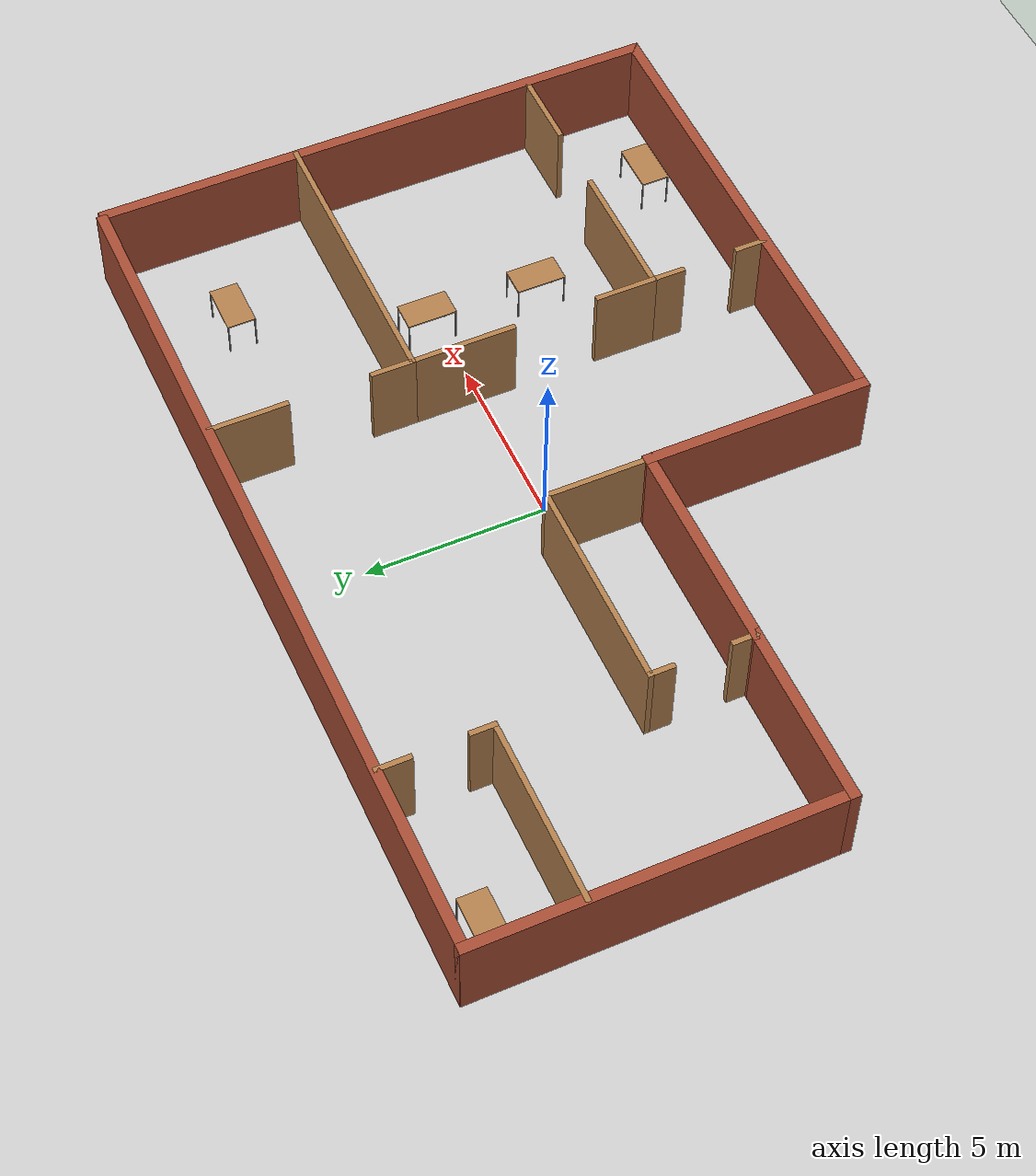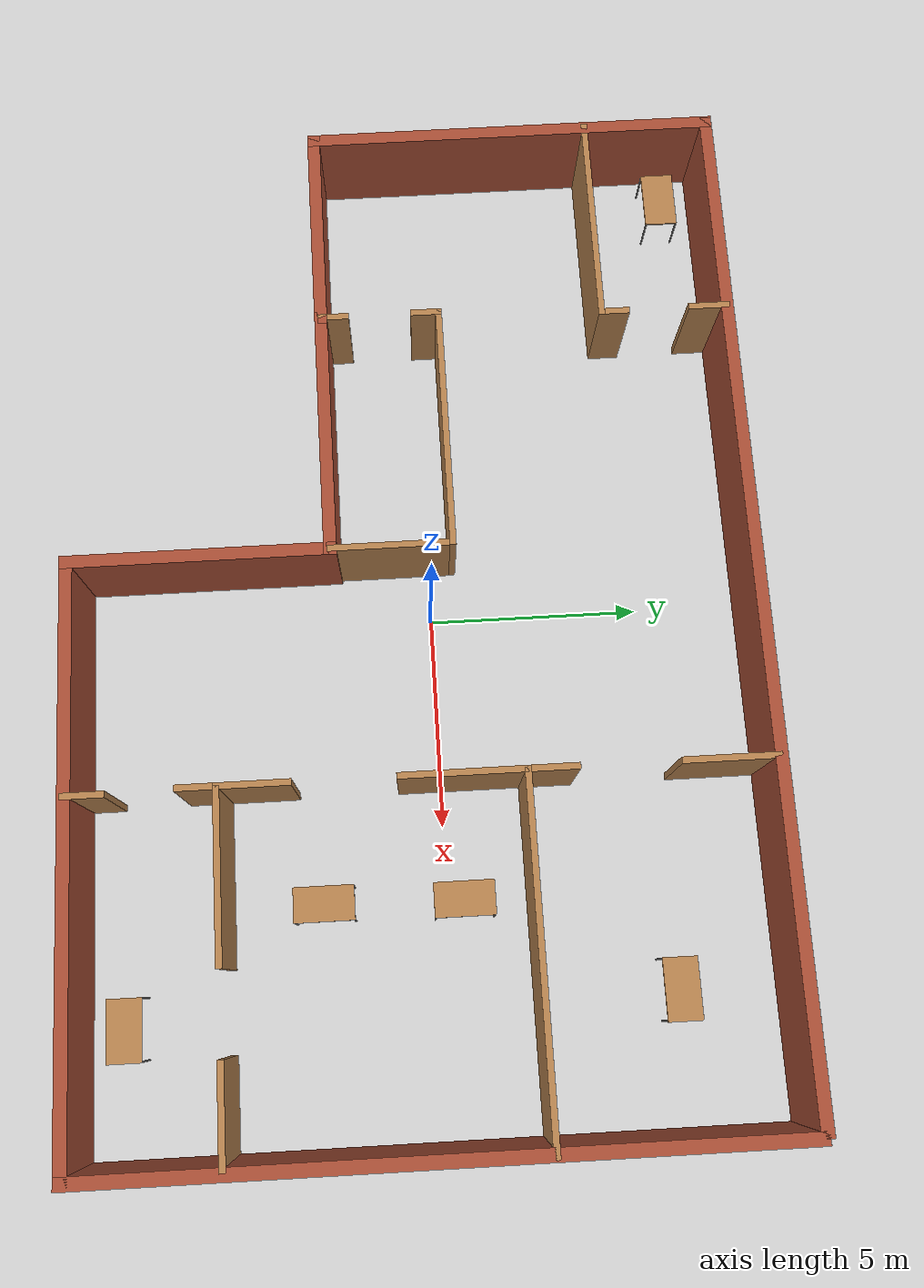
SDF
<sdf version="1.6">
 <world name="default">
  <model name="ground_plane">
   <static>1</static>
   <link name="link">
    <collision name="collision">
     <geometry><plane><normal>0 0 1</normal><size>100 100</size></plane></geometry>
     <surface><friction><ode><mu>100</mu><mu2>50</mu2></ode></friction></surface>
    </collision>
    <visual name="visual">
     <cast_shadows>0</cast_shadows>
     <geometry><plane><normal>0 0 1</normal><size>100 100</size></plane></geometry>
     <material>
      <script><uri>file://media/materials/scripts/gazebo.material</uri><name>Gazebo/Grey</name></script>
     </material>
    </visual>
   </link>
  </model>
  <light name="sun" type="directional">
   <pose>0 0 10 0 -0 0</pose>
   <diffuse>0.8 0.8 0.8 1</diffuse>
   <specular>0.1 0.1 0.1 1</specular>
   <attenuation>
    <range>1000</range>
    <constant>0.9</constant>
    <linear>0.01</linear>
    <quadratic>0.001</quadratic>
   </attenuation>
   <direction>-0.5 0.5 -1</direction>
  </light>
  <gravity>0 0 -9.8</gravity>
  <magnetic_field>6e-06 2.3e-05 -4.2e-05</magnetic_field>
  <atmosphere type="adiabatic"/>
  <physics name="default_physics" default="0" type="ode">
   <max_step_size>0.001</max_step_size>
   <real_time_factor>1</real_time_factor>
   <real_time_update_rate>1000</real_time_update_rate>
  </physics>
  <scene><ambient>0.4 0.4 0.4 1</ambient><background>0.7 0.7 0.7 1</background><shadows>1</shadows></scene>
  <spherical_coordinates>
   <surface_model>EARTH_WGS84</surface_model>
   <latitude_deg>0</latitude_deg>
   <longitude_deg>0</longitude_deg>
   <elevation>0</elevation>
   <heading_deg>0</heading_deg>
  </spherical_coordinates>
  <model name="Building">
   <pose>0.096606 -0.398648 0 0 -0 0</pose>
   <link name="Wall_0">
    <collision name="Wall_0_Collision">
     <geometry><box><size>6.15 0.3 2.5</size></box></geometry>
     <pose>0 0 1.25 0 -0 0</pose>
    </collision>
    <visual name="Wall_0_Visual">
     <pose>0 0 1.25 0 -0 0</pose>
     <geometry><box><size>6.15 0.3 2.5</size></box></geometry>
     <material>
      <script><uri>file://media/materials/scripts/gazebo.material</uri><name>Gazebo/Bricks</name></script>
      <ambient>1 1 1 1</ambient>
     </material>
    </visual>
    <pose>-4.2905 -1.875 0 0 -0 0</pose>
   </link>
   <link name="Wall_1">
    <collision name="Wall_1_Collision">
     <geometry><box><size>3 0.15 2.5</size></box></geometry>
     <pose>0 0 1.25 0 -0 0</pose>
    </collision>
    <visual name="Wall_1_Visual">
     <pose>0 0 1.25 0 -0 0</pose>
     <geometry><box><size>3 0.15 2.5</size></box></geometry>
     <material>
      <script><uri>file://media/materials/scripts/gazebo.material</uri><name>Gazebo/Wood</name></script>
      <ambient>1 1 1 1</ambient>
     </material>
    </visual>
    <pose>-1.3655 -0.45 0 0 -0 1.5708</pose>
   </link>
   <link name="Wall_10">
    <collision name="Wall_10_Collision">
     <geometry><box><size>24.25 0.3 2.5</size></box></geometry>
     <pose>0 0 1.25 0 -0 0</pose>
    </collision>
    <visual name="Wall_10_Visual">
     <pose>0 0 1.25 0 -0 0</pose>
     <geometry><box><size>24.25 0.3 2.5</size></box></geometry>
     <material>
      <script><uri>file://media/materials/scripts/gazebo.material</uri><name>Gazebo/Bricks</name></script>
      <ambient>1 1 1 1</ambient>
     </material>
    </visual>
    <pose>-0.051365 7.975 0 0 -0 0</pose>
   </link>
   <link name="Wall_15">
    <collision name="Wall_15_Collision">
     <geometry><box><size>5.25 0.15 2.5</size></box></geometry>
     <pose>0 0 1.25 0 -0 0</pose>
    </collision>
    <visual name="Wall_15_Visual">
     <pose>0 0 1.25 0 -0 0</pose>
     <geometry><box><size>5.25 0.15 2.5</size></box></geometry>
     <material>
      <script><uri>file://media/materials/scripts/gazebo.material</uri><name>Gazebo/Wood</name></script>
      <ambient>1 1 1 1</ambient>
     </material>
    </visual>
    <pose>-9.54678 4.92232 0 0 -0 0</pose>
   </link>
   <link name="Wall_17">
    <collision name="Wall_17_Collision">
     <geometry><box><size>0.75 0.15 2.5</size></box></geometry>
     <pose>0 0 1.25 0 -0 0</pose>
    </collision>
    <visual name="Wall_17_Visual">
     <pose>0 0 1.25 0 -0 0</pose>
     <geometry><box><size>0.75 0.15 2.5</size></box></geometry>
     <material>
      <script><uri>file://media/materials/scripts/gazebo.material</uri><name>Gazebo/Wood</name></script>
      <ambient>1 1 1 1</ambient>
     </material>
    </visual>
    <pose>-6.99678 5.22232 0 0 -0 1.5708</pose>
   </link>
   <link name="Wall_2">
    <collision name="Wall_2_Collision">
     <geometry><box><size>6 0.15 2.5</size></box></geometry>
     <pose>0 0 1.25 0 -0 0</pose>
    </collision>
    <visual name="Wall_2_Visual">
     <pose>0 0 1.25 0 -0 0</pose>
     <geometry><box><size>6 0.15 2.5</size></box></geometry>
     <material>
      <script><uri>file://media/materials/scripts/gazebo.material</uri><name>Gazebo/Wood</name></script>
      <ambient>1 1 1 1</ambient>
     </material>
    </visual>
    <pose>-4.2905 0.975 0 0 -0 3.14159</pose>
   </link>
   <link name="Wall_20">
    <collision name="Wall_20_Collision">
     <geometry><box><size>1 0.15 2.5</size></box></geometry>
     <pose>0 0 1.25 0 -0 0</pose>
    </collision>
    <visual name="Wall_20_Visual">
     <pose>0 0 1.25 0 -0 0</pose>
     <geometry><box><size>1 0.15 2.5</size></box></geometry>
     <material>
      <script><uri>file://media/materials/scripts/gazebo.material</uri><name>Gazebo/Wood</name></script>
      <ambient>1 1 1 1</ambient>
     </material>
    </visual>
    <pose>-7.0138 7.53363 0 0 0 -1.5708</pose>
   </link>
   <link name="Wall_22">
    <collision name="Wall_22_Collision">
     <geometry><box><size>6.4 0.3 2.5</size></box></geometry>
     <pose>0 0 1.25 0 -0 0</pose>
    </collision>
    <visual name="Wall_22_Visual">
     <pose>0 0 1.25 0 -0 0</pose>
     <geometry><box><size>6.4 0.3 2.5</size></box></geometry>
     <material>
      <script><uri>file://media/materials/scripts/gazebo.material</uri><name>Gazebo/Bricks</name></script>
      <ambient>1 1 1 1</ambient>
     </material>
    </visual>
    <pose>-1.3655 -4.925 0 0 0 -1.5708</pose>
   </link>
   <link name="Wall_23">
    <collision name="Wall_23_Collision">
     <geometry><box><size>13.731 0.3 2.5</size></box></geometry>
     <pose>0 0 1.25 0 -0 0</pose>
    </collision>
    <visual name="Wall_23_Visual">
     <pose>0 0 1.25 0 -0 0</pose>
     <geometry><box><size>13.731 0.3 2.5</size></box></geometry>
     <material>
      <script><uri>file://media/materials/scripts/gazebo.material</uri><name>Gazebo/Bricks</name></script>
      <ambient>1 1 1 1</ambient>
     </material>
    </visual>
    <pose>5.35 -7.975 0 0 -0 0</pose>
   </link>
   <link name="Wall_24">
    <collision name="Wall_24_Collision">
     <geometry><box><size>16.15 0.3 2.5</size></box></geometry>
     <pose>0 0 1.25 0 -0 0</pose>
    </collision>
    <visual name="Wall_24_Visual">
     <pose>0 0 1.25 0 -0 0</pose>
     <geometry><box><size>16.15 0.3 2.5</size></box></geometry>
     <material>
      <script><uri>file://media/materials/scripts/gazebo.material</uri><name>Gazebo/Bricks</name></script>
      <ambient>1 1 1 1</ambient>
     </material>
    </visual>
    <pose>12.0655 -0.05 0 0 -0 1.5708</pose>
   </link>
   <link name="Wall_26">
    <collision name="Wall_26_Collision">
     <geometry><box><size>10.15 0.3 2.5</size></box></geometry>
     <pose>0 0 1.25 0 -0 0</pose>
    </collision>
    <visual name="Wall_26_Visual">
     <pose>0 0 1.25 0 -0 0</pose>
     <geometry><box><size>10.15 0.3 2.5</size></box></geometry>
     <material>
      <script><uri>file://media/materials/scripts/gazebo.material</uri><name>Gazebo/Bricks</name></script>
      <ambient>1 1 1 1</ambient>
     </material>
    </visual>
    <pose>-12.0655 3.05 0 0 -0 1.5708</pose>
   </link>
   <link name="Wall_29">
    <collision name="Wall_29_Collision">
     <geometry><box><size>2.25 0.15 2.5</size></box></geometry>
     <pose>0 0 1.25 0 -0 0</pose>
    </collision>
    <visual name="Wall_29_Visual">
     <pose>0 0 1.25 0 -0 0</pose>
     <geometry><box><size>2.25 0.15 2.5</size></box></geometry>
     <material>
      <script><uri>file://media/materials/scripts/gazebo.material</uri><name>Gazebo/Wood</name></script>
      <ambient>1 1 1 1</ambient>
     </material>
    </visual>
    <pose>4.00585 6.87362 0 0 0 -1.5708</pose>
   </link>
   <link name="Wall_3">
    <collision name="Wall_3_Collision">
     <geometry><box><size>0.75 0.15 2.5</size></box></geometry>
     <pose>0 0 1.25 0 -0 0</pose>
    </collision>
    <visual name="Wall_3_Visual">
     <pose>0 0 1.25 0 -0 0</pose>
     <geometry><box><size>0.75 0.15 2.5</size></box></geometry>
     <material>
      <script><uri>file://media/materials/scripts/gazebo.material</uri><name>Gazebo/Wood</name></script>
      <ambient>1 1 1 1</ambient>
     </material>
    </visual>
    <pose>-7.2155 0.675 0 0 0 -1.5708</pose>
   </link>
   <link name="Wall_34">
    <collision name="Wall_34_Collision">
     <geometry><box><size>1.25 0.15 2.5</size></box></geometry>
     <pose>0 0 1.25 0 -0 0</pose>
    </collision>
    <visual name="Wall_34_Visual">
     <pose>0 0 1.25 0 -0 0</pose>
     <geometry><box><size>1.25 0.15 2.5</size></box></geometry>
     <material>
      <script><uri>file://media/materials/scripts/gazebo.material</uri><name>Gazebo/Wood</name></script>
      <ambient>1 1 1 1</ambient>
     </material>
    </visual>
    <pose>3.99805 2.86928 0 0 0 -1.5708</pose>
   </link>
   <link name="Wall_35">
    <collision name="Wall_35_Collision">
     <geometry><box><size>8.25 0.15 2.5</size></box></geometry>
     <pose>0 0 1.25 0 -0 0</pose>
    </collision>
    <visual name="Wall_35_Visual">
     <pose>0 0 1.25 0 -0 0</pose>
     <geometry><box><size>8.25 0.15 2.5</size></box></geometry>
     <material>
      <script><uri>file://media/materials/scripts/gazebo.material</uri><name>Gazebo/Wood</name></script>
      <ambient>1 1 1 1</ambient>
     </material>
    </visual>
    <pose>8.04805 2.31928 0 0 -0 0</pose>
   </link>
   <link name="Wall_38">
    <collision name="Wall_38_Collision">
     <geometry><box><size>3 0.15 2.5</size></box></geometry>
     <pose>0 0 1.25 0 -0 0</pose>
    </collision>
    <visual name="Wall_38_Visual">
     <pose>0 0 1.25 0 -0 0</pose>
     <geometry><box><size>3 0.15 2.5</size></box></geometry>
     <material>
      <script><uri>file://media/materials/scripts/gazebo.material</uri><name>Gazebo/Wood</name></script>
      <ambient>1 1 1 1</ambient>
     </material>
    </visual>
    <pose>3.99805 0.894284 0 0 0 -1.5708</pose>
   </link>
   <link name="Wall_40">
    <collision name="Wall_40_Collision">
     <geometry><box><size>1.75 0.15 2.5</size></box></geometry>
     <pose>0 0 1.25 0 -0 0</pose>
    </collision>
    <visual name="Wall_40_Visual">
     <pose>0 0 1.25 0 -0 0</pose>
     <geometry><box><size>1.75 0.15 2.5</size></box></geometry>
     <material>
      <script><uri>file://media/materials/scripts/gazebo.material</uri><name>Gazebo/Wood</name></script>
      <ambient>1 1 1 1</ambient>
     </material>
    </visual>
    <pose>4.00066 -3.81284 0 0 0 -1.5708</pose>
   </link>
   <link name="Wall_44">
    <collision name="Wall_44_Collision">
     <geometry><box><size>1 0.15 2.5</size></box></geometry>
     <pose>0 0 1.25 0 -0 0</pose>
    </collision>
    <visual name="Wall_44_Visual">
     <pose>0 0 1.25 0 -0 0</pose>
     <geometry><box><size>1 0.15 2.5</size></box></geometry>
     <material>
      <script><uri>file://media/materials/scripts/gazebo.material</uri><name>Gazebo/Wood</name></script>
      <ambient>1 1 1 1</ambient>
     </material>
    </visual>
    <pose>4.00066 -5.03784 0 0 0 -1.5708</pose>
   </link>
   <link name="Wall_46">
    <collision name="Wall_46_Collision">
     <geometry><box><size>1 0.15 2.5</size></box></geometry>
     <pose>0 0 1.25 0 -0 0</pose>
    </collision>
    <visual name="Wall_46_Visual">
     <pose>0 0 1.25 0 -0 0</pose>
     <geometry><box><size>1 0.15 2.5</size></box></geometry>
     <material>
      <script><uri>file://media/materials/scripts/gazebo.material</uri><name>Gazebo/Wood</name></script>
      <ambient>1 1 1 1</ambient>
     </material>
    </visual>
    <pose>4.04354 -7.56511 0 0 -0 1.5708</pose>
   </link>
   <link name="Wall_48">
    <collision name="Wall_48_Collision">
     <geometry><box><size>4 0.15 2.5</size></box></geometry>
     <pose>0 0 1.25 0 -0 0</pose>
    </collision>
    <visual name="Wall_48_Visual">
     <pose>0 0 1.25 0 -0 0</pose>
     <geometry><box><size>4 0.15 2.5</size></box></geometry>
     <material>
      <script><uri>file://media/materials/scripts/gazebo.material</uri><name>Gazebo/Wood</name></script>
      <ambient>1 1 1 1</ambient>
     </material>
    </visual>
    <pose>5.92566 -4.61284 0 0 -0 0</pose>
   </link>
   <link name="Wall_5">
    <collision name="Wall_5_Collision">
     <geometry><box><size>0.75 0.15 2.5</size></box></geometry>
     <pose>0 0 1.25 0 -0 0</pose>
    </collision>
    <visual name="Wall_5_Visual">
     <pose>0 0 1.25 0 -0 0</pose>
     <geometry><box><size>0.75 0.15 2.5</size></box></geometry>
     <material>
      <script><uri>file://media/materials/scripts/gazebo.material</uri><name>Gazebo/Wood</name></script>
      <ambient>1 1 1 1</ambient>
     </material>
    </visual>
    <pose>-7.2155 -1.575 0 0 -0 1.5708</pose>
   </link>
   <link name="Wall_50">
    <collision name="Wall_50_Collision">
     <geometry><box><size>2.25 0.15 2.5</size></box></geometry>
     <pose>0 0 1.25 0 -0 0</pose>
    </collision>
    <visual name="Wall_50_Visual">
     <pose>0 0 1.25 0 -0 0</pose>
     <geometry><box><size>2.25 0.15 2.5</size></box></geometry>
     <material>
      <script><uri>file://media/materials/scripts/gazebo.material</uri><name>Gazebo/Wood</name></script>
      <ambient>1 1 1 1</ambient>
     </material>
    </visual>
    <pose>10.9177 -4.61728 0 0 -0 0</pose>
   </link>
   <link name="Wall_7">
    <collision name="Wall_7_Collision">
     <geometry><box><size>5.15 0.3 2.5</size></box></geometry>
     <pose>0 0 1.25 0 -0 0</pose>
    </collision>
    <visual name="Wall_7_Visual">
     <pose>0 0 1.25 0 -0 0</pose>
     <geometry><box><size>5.15 0.3 2.5</size></box></geometry>
     <material>
      <script><uri>file://media/materials/scripts/gazebo.material</uri><name>Gazebo/Bricks</name></script>
      <ambient>1 1 1 1</ambient>
     </material>
    </visual>
    <pose>-9.6405 -1.875 0 0 -0 3.14159</pose>
   </link>
   <static>1</static>
  </model>
  <model name="table">
   <static>0</static>
   <link name="link">
    <collision name="surface">
     <pose>0 0 1 0 -0 0</pose>
     <geometry><box><size>1.5 0.8 0.03</size></box></geometry>
     <surface><friction><ode><mu>0.6</mu><mu2>0.6</mu2></ode></friction></surface>
    </collision>
    <visual name="visual1">
     <pose>0 0 1 0 -0 0</pose>
     <geometry><box><size>1.4 0.8 0.04</size></box></geometry>
     <material>
      <script><uri>file://media/materials/scripts/gazebo.material</uri><name>Gazebo/Wood</name></script>
     </material>
    </visual>
    <collision name="front_left_leg">
     <pose>0.68 0.38 0.5 0 -0 0</pose>
     <geometry><cylinder><radius>0.02</radius><length>1</length></cylinder></geometry>
    </collision>
    <visual name="front_left_leg">
     <pose>0.68 0.38 0.5 0 -0 0</pose>
     <geometry><cylinder><radius>0.02</radius><length>1</length></cylinder></geometry>
     <material>
      <script><uri>file://media/materials/scripts/gazebo.material</uri><name>Gazebo/Grey</name></script>
     </material>
    </visual>
    <collision name="front_right_leg">
     <pose>0.68 -0.38 0.5 0 -0 0</pose>
     <geometry><cylinder><radius>0.02</radius><length>1</length></cylinder></geometry>
    </collision>
    <visual name="front_right_leg">
     <pose>0.68 -0.38 0.5 0 -0 0</pose>
     <geometry><cylinder><radius>0.02</radius><length>1</length></cylinder></geometry>
     <material>
      <script><uri>file://media/materials/scripts/gazebo.material</uri><name>Gazebo/Grey</name></script>
     </material>
    </visual>
    <collision name="back_right_leg">
     <pose>-0.68 -0.38 0.5 0 -0 0</pose>
     <geometry><cylinder><radius>0.02</radius><length>1</length></cylinder></geometry>
    </collision>
    <visual name="back_right_leg">
     <pose>-0.68 -0.38 0.5 0 -0 0</pose>
     <geometry><cylinder><radius>0.02</radius><length>1</length></cylinder></geometry>
     <material>
      <script><uri>file://media/materials/scripts/gazebo.material</uri><name>Gazebo/Grey</name></script>
     </material>
    </visual>
    <collision name="back_left_leg">
     <pose>-0.68 0.38 0.5 0 -0 0</pose>
     <geometry><cylinder><radius>0.02</radius><length>1</length></cylinder></geometry>
    </collision>
    <visual name="back_left_leg">
     <pose>-0.68 0.38 0.5 0 -0 0</pose>
     <geometry><cylinder><radius>0.02</radius><length>1</length></cylinder></geometry>
     <material>
      <script><uri>file://media/materials/scripts/gazebo.material</uri><name>Gazebo/Grey</name></script>
     </material>
    </visual>
    <inertial>
     <inertia><ixx>1</ixx><ixy>0</ixy><ixz>0</ixz><iyy>1</iyy><iyz>0</iyz><izz>1</izz></inertia>
     <mass>1</mass>
    </inertial>
   </link>
   <pose>-10.7228 6.5125 -9e-06 1e-06 -1e-06 0</pose>
  </model>
  <model name="table_0">
   <static>0</static>
   <link name="link">
    <collision name="surface">
     <pose>0 0 1 0 -0 0</pose>
     <geometry><box><size>1.5 0.8 0.03</size></box></geometry>
     <surface><friction><ode><mu>0.6</mu><mu2>0.6</mu2></ode></friction></surface>
    </collision>
    <visual name="visual1">
     <pose>0 0 1 0 -0 0</pose>
     <geometry><box><size>1.4 0.8 0.04</size></box></geometry>
     <material>
      <script><uri>file://media/materials/scripts/gazebo.material</uri><name>Gazebo/Wood</name></script>
     </material>
    </visual>
    <collision name="front_left_leg">
     <pose>0.68 0.38 0.5 0 -0 0</pose>
     <geometry><cylinder><radius>0.02</radius><length>1</length></cylinder></geometry>
    </collision>
    <visual name="front_left_leg">
     <pose>0.68 0.38 0.5 0 -0 0</pose>
     <geometry><cylinder><radius>0.02</radius><length>1</length></cylinder></geometry>
     <material>
      <script><uri>file://media/materials/scripts/gazebo.material</uri><name>Gazebo/Grey</name></script>
     </material>
    </visual>
    <collision name="front_right_leg">
     <pose>0.68 -0.38 0.5 0 -0 0</pose>
     <geometry><cylinder><radius>0.02</radius><length>1</length></cylinder></geometry>
    </collision>
    <visual name="front_right_leg">
     <pose>0.68 -0.38 0.5 0 -0 0</pose>
     <geometry><cylinder><radius>0.02</radius><length>1</length></cylinder></geometry>
     <material>
      <script><uri>file://media/materials/scripts/gazebo.material</uri><name>Gazebo/Grey</name></script>
     </material>
    </visual>
    <collision name="back_right_leg">
     <pose>-0.68 -0.38 0.5 0 -0 0</pose>
     <geometry><cylinder><radius>0.02</radius><length>1</length></cylinder></geometry>
    </collision>
    <visual name="back_right_leg">
     <pose>-0.68 -0.38 0.5 0 -0 0</pose>
     <geometry><cylinder><radius>0.02</radius><length>1</length></cylinder></geometry>
     <material>
      <script><uri>file://media/materials/scripts/gazebo.material</uri><name>Gazebo/Grey</name></script>
     </material>
    </visual>
    <collision name="back_left_leg">
     <pose>-0.68 0.38 0.5 0 -0 0</pose>
     <geometry><cylinder><radius>0.02</radius><length>1</length></cylinder></geometry>
    </collision>
    <visual name="back_left_leg">
     <pose>-0.68 0.38 0.5 0 -0 0</pose>
     <geometry><cylinder><radius>0.02</radius><length>1</length></cylinder></geometry>
     <material>
      <script><uri>file://media/materials/scripts/gazebo.material</uri><name>Gazebo/Grey</name></script>
     </material>
    </visual>
    <inertial>
     <inertia><ixx>1</ixx><ixy>0</ixy><ixz>0</ixz><iyy>1</iyy><iyz>0</iyz><izz>1</izz></inertia>
     <mass>1</mass>
    </inertial>
   </link>
   <pose>9.00297 5.12195 -1e-06 -1e-06 1e-06 0</pose>
  </model>
  <model name="table_1">
   <static>0</static>
   <link name="link">
    <collision name="surface">
     <pose>0 0 1 0 -0 0</pose>
     <geometry><box><size>1.5 0.8 0.03</size></box></geometry>
     <surface><friction><ode><mu>0.6</mu><mu2>0.6</mu2></ode></friction></surface>
    </collision>
    <visual name="visual1">
     <pose>0 0 1 0 -0 0</pose>
     <geometry><box><size>1.4 0.8 0.04</size></box></geometry>
     <material>
      <script><uri>file://media/materials/scripts/gazebo.material</uri><name>Gazebo/Wood</name></script>
     </material>
    </visual>
    <collision name="front_left_leg">
     <pose>0.68 0.38 0.5 0 -0 0</pose>
     <geometry><cylinder><radius>0.02</radius><length>1</length></cylinder></geometry>
    </collision>
    <visual name="front_left_leg">
     <pose>0.68 0.38 0.5 0 -0 0</pose>
     <geometry><cylinder><radius>0.02</radius><length>1</length></cylinder></geometry>
     <material>
      <script><uri>file://media/materials/scripts/gazebo.material</uri><name>Gazebo/Grey</name></script>
     </material>
    </visual>
    <collision name="front_right_leg">
     <pose>0.68 -0.38 0.5 0 -0 0</pose>
     <geometry><cylinder><radius>0.02</radius><length>1</length></cylinder></geometry>
    </collision>
    <visual name="front_right_leg">
     <pose>0.68 -0.38 0.5 0 -0 0</pose>
     <geometry><cylinder><radius>0.02</radius><length>1</length></cylinder></geometry>
     <material>
      <script><uri>file://media/materials/scripts/gazebo.material</uri><name>Gazebo/Grey</name></script>
     </material>
    </visual>
    <collision name="back_right_leg">
     <pose>-0.68 -0.38 0.5 0 -0 0</pose>
     <geometry><cylinder><radius>0.02</radius><length>1</length></cylinder></geometry>
    </collision>
    <visual name="back_right_leg">
     <pose>-0.68 -0.38 0.5 0 -0 0</pose>
     <geometry><cylinder><radius>0.02</radius><length>1</length></cylinder></geometry>
     <material>
      <script><uri>file://media/materials/scripts/gazebo.material</uri><name>Gazebo/Grey</name></script>
     </material>
    </visual>
    <collision name="back_left_leg">
     <pose>-0.68 0.38 0.5 0 -0 0</pose>
     <geometry><cylinder><radius>0.02</radius><length>1</length></cylinder></geometry>
    </collision>
    <visual name="back_left_leg">
     <pose>-0.68 0.38 0.5 0 -0 0</pose>
     <geometry><cylinder><radius>0.02</radius><length>1</length></cylinder></geometry>
     <material>
      <script><uri>file://media/materials/scripts/gazebo.material</uri><name>Gazebo/Grey</name></script>
     </material>
    </visual>
    <inertial>
     <inertia><ixx>1</ixx><ixy>0</ixy><ixz>0</ixz><iyy>1</iyy><iyz>0</iyz><izz>1</izz></inertia>
     <mass>1</mass>
    </inertial>
   </link>
   <pose>6.75225 0.384972 -9e-06 0 1e-06 1.57157</pose>
  </model>
  <model name="table_1_clone">
   <static>0</static>
   <link name="link">
    <collision name="surface">
     <pose>0 0 1 0 -0 0</pose>
     <geometry><box><size>1.5 0.8 0.03</size></box></geometry>
     <surface><friction><ode><mu>0.6</mu><mu2>0.6</mu2></ode></friction></surface>
    </collision>
    <visual name="visual1">
     <pose>0 0 1 0 -0 0</pose>
     <geometry><box><size>1.4 0.8 0.04</size></box></geometry>
     <material>
      <script><uri>file://media/materials/scripts/gazebo.material</uri><name>Gazebo/Wood</name></script>
     </material>
    </visual>
    <collision name="front_left_leg">
     <pose>0.68 0.38 0.5 0 -0 0</pose>
     <geometry><cylinder><radius>0.02</radius><length>1</length></cylinder></geometry>
    </collision>
    <visual name="front_left_leg">
     <pose>0.68 0.38 0.5 0 -0 0</pose>
     <geometry><cylinder><radius>0.02</radius><length>1</length></cylinder></geometry>
     <material>
      <script><uri>file://media/materials/scripts/gazebo.material</uri><name>Gazebo/Grey</name></script>
     </material>
    </visual>
    <collision name="front_right_leg">
     <pose>0.68 -0.38 0.5 0 -0 0</pose>
     <geometry><cylinder><radius>0.02</radius><length>1</length></cylinder></geometry>
    </collision>
    <visual name="front_right_leg">
     <pose>0.68 -0.38 0.5 0 -0 0</pose>
     <geometry><cylinder><radius>0.02</radius><length>1</length></cylinder></geometry>
     <material>
      <script><uri>file://media/materials/scripts/gazebo.material</uri><name>Gazebo/Grey</name></script>
     </material>
    </visual>
    <collision name="back_right_leg">
     <pose>-0.68 -0.38 0.5 0 -0 0</pose>
     <geometry><cylinder><radius>0.02</radius><length>1</length></cylinder></geometry>
    </collision>
    <visual name="back_right_leg">
     <pose>-0.68 -0.38 0.5 0 -0 0</pose>
     <geometry><cylinder><radius>0.02</radius><length>1</length></cylinder></geometry>
     <material>
      <script><uri>file://media/materials/scripts/gazebo.material</uri><name>Gazebo/Grey</name></script>
     </material>
    </visual>
    <collision name="back_left_leg">
     <pose>-0.68 0.38 0.5 0 -0 0</pose>
     <geometry><cylinder><radius>0.02</radius><length>1</length></cylinder></geometry>
    </collision>
    <visual name="back_left_leg">
     <pose>-0.68 0.38 0.5 0 -0 0</pose>
     <geometry><cylinder><radius>0.02</radius><length>1</length></cylinder></geometry>
     <material>
      <script><uri>file://media/materials/scripts/gazebo.material</uri><name>Gazebo/Grey</name></script>
     </material>
    </visual>
    <inertial>
     <inertia><ixx>1</ixx><ixy>0</ixy><ixz>0</ixz><iyy>1</iyy><iyz>0</iyz><izz>1</izz></inertia>
     <mass>1</mass>
    </inertial>
   </link>
   <pose>6.69104 -2.81314 -9e-06 0 1e-06 1.57157</pose>
  </model>
  <model name="table_2">
   <static>0</static>
   <link name="link">
    <collision name="surface">
     <pose>0 0 1 0 -0 0</pose>
     <geometry><box><size>1.5 0.8 0.03</size></box></geometry>
     <surface><friction><ode><mu>0.6</mu><mu2>0.6</mu2></ode></friction></surface>
    </collision>
    <visual name="visual1">
     <pose>0 0 1 0 -0 0</pose>
     <geometry><box><size>1.4 0.8 0.04</size></box></geometry>
     <material>
      <script><uri>file://media/materials/scripts/gazebo.material</uri><name>Gazebo/Wood</name></script>
     </material>
    </visual>
    <collision name="front_left_leg">
     <pose>0.68 0.38 0.5 0 -0 0</pose>
     <geometry><cylinder><radius>0.02</radius><length>1</length></cylinder></geometry>
    </collision>
    <visual name="front_left_leg">
     <pose>0.68 0.38 0.5 0 -0 0</pose>
     <geometry><cylinder><radius>0.02</radius><length>1</length></cylinder></geometry>
     <material>
      <script><uri>file://media/materials/scripts/gazebo.material</uri><name>Gazebo/Grey</name></script>
     </material>
    </visual>
    <collision name="front_right_leg">
     <pose>0.68 -0.38 0.5 0 -0 0</pose>
     <geometry><cylinder><radius>0.02</radius><length>1</length></cylinder></geometry>
    </collision>
    <visual name="front_right_leg">
     <pose>0.68 -0.38 0.5 0 -0 0</pose>
     <geometry><cylinder><radius>0.02</radius><length>1</length></cylinder></geometry>
     <material>
      <script><uri>file://media/materials/scripts/gazebo.material</uri><name>Gazebo/Grey</name></script>
     </material>
    </visual>
    <collision name="back_right_leg">
     <pose>-0.68 -0.38 0.5 0 -0 0</pose>
     <geometry><cylinder><radius>0.02</radius><length>1</length></cylinder></geometry>
    </collision>
    <visual name="back_right_leg">
     <pose>-0.68 -0.38 0.5 0 -0 0</pose>
     <geometry><cylinder><radius>0.02</radius><length>1</length></cylinder></geometry>
     <material>
      <script><uri>file://media/materials/scripts/gazebo.material</uri><name>Gazebo/Grey</name></script>
     </material>
    </visual>
    <collision name="back_left_leg">
     <pose>-0.68 0.38 0.5 0 -0 0</pose>
     <geometry><cylinder><radius>0.02</radius><length>1</length></cylinder></geometry>
    </collision>
    <visual name="back_left_leg">
     <pose>-0.68 0.38 0.5 0 -0 0</pose>
     <geometry><cylinder><radius>0.02</radius><length>1</length></cylinder></geometry>
     <material>
      <script><uri>file://media/materials/scripts/gazebo.material</uri><name>Gazebo/Grey</name></script>
     </material>
    </visual>
    <inertial>
     <inertia><ixx>1</ixx><ixy>0</ixy><ixz>0</ixz><iyy>1</iyy><iyz>0</iyz><izz>1</izz></inertia>
     <mass>1</mass>
    </inertial>
   </link>
   <pose>9.20848 -7.33779 -2e-06 0 -0 0</pose>
  </model>
 </world>
</sdf>
